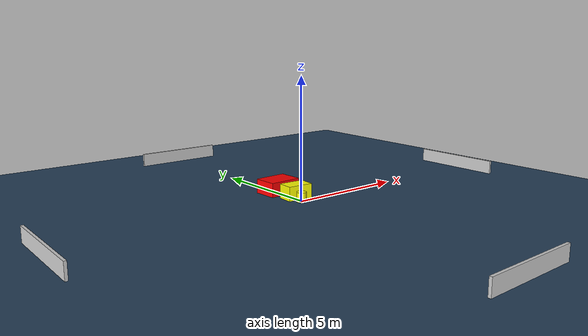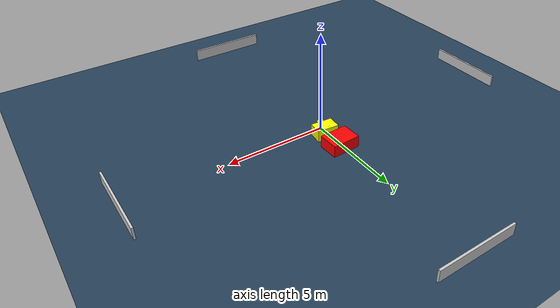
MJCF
<?xml version="1.0" ?>
<mujoco model="generated_environment">
  <option timestep="0.01" integrator="RK4" cone="elliptic"/>
  <default>
    <geom density="1"/>
  </default>
  <asset>
    <texture builtin="gradient" height="3072" name="skybox" rgb1="0.3 0.5 0.7" rgb2="0 0 0" type="skybox" width="512"/>
    <texture builtin="checker" height="300" name="groundplane" rgb1="0.2 0.3 0.4" rgb2="0.1 0.2 0.3" type="2d" width="300"/>
    <material name="groundplane" reflectance="0.2" texrepeat="5 5" texture="groundplane"/>
  </asset>
  <worldbody>
    <light dir="0 0 -1" directional="true" pos="0 0 1.5"/>
    <geom condim="3" friction="0.5 0.005 0.001" material="groundplane" name="floor" pos="0 0 0" size="0 0 0.05" type="plane"/>
    <body name="walls">
      <geom name="wall_1" condim="4" pos="-10.0 0.0 0.3" rgba="0.800000011920929 0.800000011920929 0.800000011920929 1.0" size="0.05 2.0 0.3" type="box"/>
      <geom name="wall_2" condim="4" pos="10.0 0.0 0.3" rgba="0.800000011920929 0.800000011920929 0.800000011920929 1.0" size="0.05 2.0 0.3" type="box"/>
      <geom name="wall_3" condim="4" pos="0.0 -10.0 0.3" rgba="0.800000011920929 0.800000011920929 0.800000011920929 1.0" size="2.0 0.05 0.3" type="box"/>
      <geom name="wall_4" condim="4" pos="0.0 10.0 0.3" rgba="0.800000011920929 0.800000011920929 0.800000011920929 1.0" size="2.0 0.05 0.3" type="box"/>
    </body>
    <body name="robot">
      <joint name="joint_x" type="slide" pos="0 0 0" axis="1 0 0"/>
      <joint name="joint_y" type="slide" pos="0 0 0" axis="0 1 0"/>
      <geom name="robot" type="cylinder" pos="0.0 0.0 0.2" size="0.2 0.2 0.0" mass="5.0" friction="1.0 0.005 0.0001" condim="4" rgba="1.0 1.0 0.0 1.0"/>
    </body>
    <body name="obstacle_1_movable">
      <geom name="obstacle_1_movable" condim="4" pos="0.17633418722797828 0.5719225789308479 0.3" euler="0 0 355.55458858332037" friction="0.0 0.005 0.001" rgba="1.0 1.0 0.0 1.0" size="0.54297197474838 0.34409900092773343 0.3" type="box" mass="0.1"/>
      <joint type="free"/>
    </body>
    <body name="obstacle_2_static">
      <geom name="obstacle_2_static" condim="4" pos="0.13016456528910889 1.717074410767449 0.3" euler="0 0 2.236783916199374" friction="0.0 0.005 0.001" rgba="1.0 0.0 0.0 1.0" size="0.7055563694927569 0.5205625242443261 0.3" type="box"/>
    </body>
  </worldbody>
  <actuator>
    <motor name="actuator_x" joint="joint_x" gear="1" ctrlrange="-1 1"/>
    <motor name="actuator_y" joint="joint_y" gear="1" ctrlrange="-1 1"/>
  </actuator>
</mujoco>
